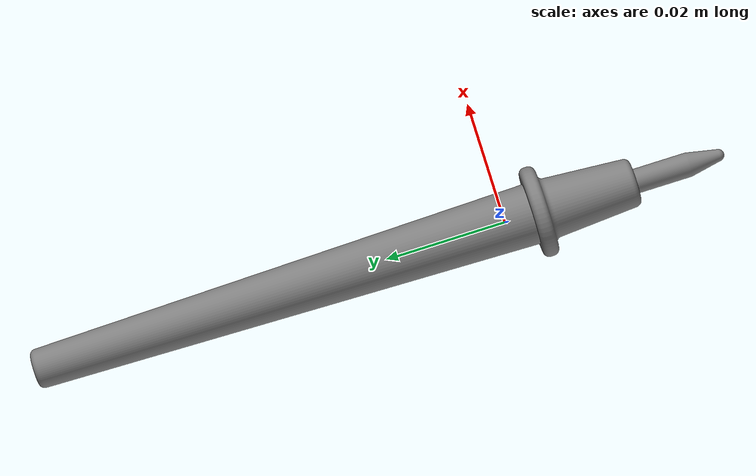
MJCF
<mujoco model="task_board_probe">
    <compiler angle="radian" meshdir="task_board/meshes" autolimits="true" inertiafromgeom="false"/>
    <asset>
        <mesh name="TaskBoardProbe" file="stl/TaskBoardProbe.stl" />
        <mesh name="UCX_TaskBoardProbe_001" file="stl/UCX_TaskBoardProbe_001.stl" />
        <mesh name="UCX_TaskBoardProbe_002" file="stl/UCX_TaskBoardProbe_002.stl" />
        <mesh name="UCX_TaskBoardProbe_003" file="stl/UCX_TaskBoardProbe_003.stl" />
        <mesh name="UCX_TaskBoardProbe_004" file="stl/UCX_TaskBoardProbe_004.stl" />
    </asset>

    <default>
		<default class="task_board_probe_visual">
			<geom contype="0" conaffinity="0"/>
		</default>
		<default class="task_board_probe_collision">
			<geom rgba="0.9 0.9 0.9 1.0" group="3"/>
		</default>
	</default>

    <worldbody>
        <body name="task_board_probe">
            <inertial mass="0.006231526378542185" pos="-2.27348695425178e-11 0.0001277880510315299 -3.0341962276025924e-09" quat="-0.4846147894859314 -0.5149257183074951 0.5149257183074951 0.4846147894859314" diaginertia="6.648315320489928e-08 5.043107648816658e-06 5.043107648816658e-06"/>
            <geom name="task_board_probe_visual" type="mesh" mesh="TaskBoardProbe" class="task_board_probe_visual"/>
            <geom name="task_board_probe_collision_001" type="mesh" mesh="UCX_TaskBoardProbe_001" friction="0.5" solimp="0.95 0.95 0.005" solref="0.03 1" condim="6" class="task_board_probe_collision"/>
            <geom name="task_board_probe_collision_002" type="mesh" mesh="UCX_TaskBoardProbe_002" friction="0.5" solimp="0.95 0.95 0.005" solref="0.03 1" condim="6" class="task_board_probe_collision"/>
            <geom name="task_board_probe_collision_003" type="mesh" mesh="UCX_TaskBoardProbe_003" friction="0.5" solimp="0.95 0.95 0.005" solref="0.03 1" condim="6" class="task_board_probe_collision"/>
            <geom name="task_board_probe_collision_004" type="mesh" mesh="UCX_TaskBoardProbe_004" friction="0.5" solimp="0.95 0.95 0.005" solref="0.03 1" condim="6" class="task_board_probe_collision"/>
            <geom type="sphere" pos="0 -0.056582 0" size="0.00099" friction="0.5" solimp="0.95 0.95 0.005" solref="0.03 1" condim="6" class="task_board_probe_collision"/>
        </body>
    </worldbody>
</mujoco>
